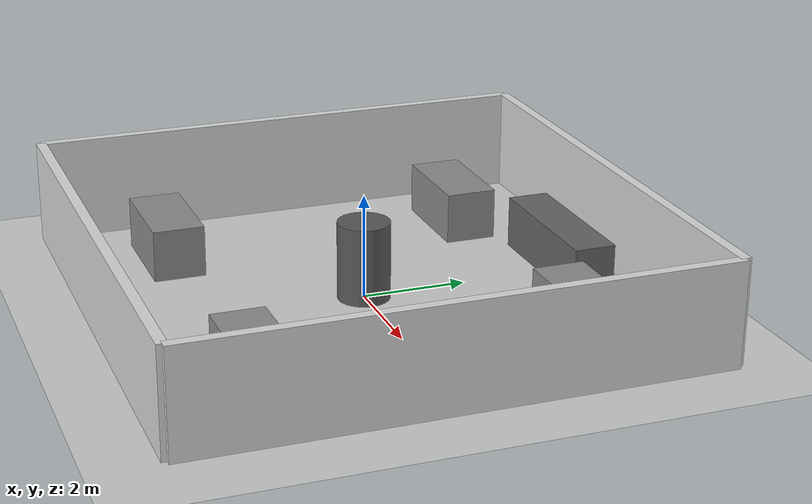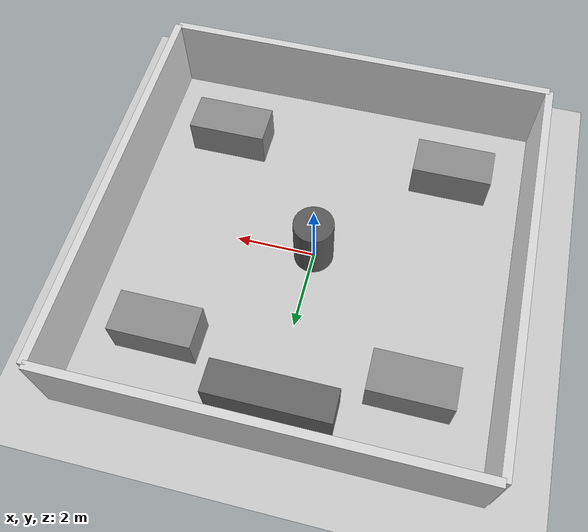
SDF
<?xml version="1.0"?>
<sdf version="1.6">

<world name="amr_world">

  <physics type="ode">
    <max_step_size>0.01</max_step_size>
    <real_time_update_rate>100</real_time_update_rate>
  </physics>

  <!-- Ground -->
  <include>
    <uri>model://ground_plane</uri>
  </include>

  <!-- Sun -->
  <include>
    <uri>model://sun</uri>
  </include>

  <!-- NORTH WALL -->
  <model name="north_wall">
    <static>true</static>
    <pose>0 5 1 0 0 0</pose>

    <link name="link">

      <collision name="collision">
        <geometry>
          <box>
            <size>10 0.2 2</size>
          </box>
        </geometry>
      </collision>

      <visual name="visual">
        <geometry>
          <box>
            <size>10 0.2 2</size>
          </box>
        </geometry>

        <material>
          <ambient>0.85 0.85 0.85 1</ambient>
          <diffuse>0.85 0.85 0.85 1</diffuse>
        </material>

      </visual>

    </link>
  </model>

  <!-- SOUTH WALL -->
  <model name="south_wall">
    <static>true</static>
    <pose>0 -5 1 0 0 0</pose>

    <link name="link">

      <collision name="collision">
        <geometry>
          <box>
            <size>10 0.2 2</size>
          </box>
        </geometry>
      </collision>

      <visual name="visual">
        <geometry>
          <box>
            <size>10 0.2 2</size>
          </box>
        </geometry>

        <material>
          <ambient>0.85 0.85 0.85 1</ambient>
          <diffuse>0.85 0.85 0.85 1</diffuse>
        </material>

      </visual>

    </link>
  </model>

  <!-- EAST WALL -->
  <model name="east_wall">
    <static>true</static>
    <pose>5 0 1 0 0 1.5708</pose>

    <link name="link">

      <collision name="collision">
        <geometry>
          <box>
            <size>10 0.2 2</size>
          </box>
        </geometry>
      </collision>

      <visual name="visual">
        <geometry>
          <box>
            <size>10 0.2 2</size>
          </box>
        </geometry>

        <material>
          <ambient>0.85 0.85 0.85 1</ambient>
          <diffuse>0.85 0.85 0.85 1</diffuse>
        </material>

      </visual>

    </link>
  </model>

  <!-- WEST WALL -->
  <model name="west_wall">
    <static>true</static>
    <pose>-5 0 1 0 0 1.5708</pose>

    <link name="link">

      <collision name="collision">
        <geometry>
          <box>
            <size>10 0.2 2</size>
          </box>
        </geometry>
      </collision>

      <visual name="visual">
        <geometry>
          <box>
            <size>10 0.2 2</size>
          </box>
        </geometry>

        <material>
          <ambient>0.85 0.85 0.85 1</ambient>
          <diffuse>0.85 0.85 0.85 1</diffuse>
        </material>

      </visual>

    </link>
  </model>

  <!-- LARGE MACHINE 1 -->

  <model name="machine_1">

    <static>true</static>

    <pose>-3 -3 0.5 0 0 0</pose>

    <link name="link">

      <collision name="collision">
        <geometry>
          <box>
            <size>2 1 1</size>
          </box>
        </geometry>
      </collision>

      <visual name="visual">
        <geometry>
          <box>
            <size>2 1 1</size>
          </box>
        </geometry>

        <material>
          <ambient>0.55 0.55 0.55 1</ambient>
          <diffuse>0.55 0.55 0.55 1</diffuse>
        </material>

      </visual>

    </link>

  </model>

  <!-- MACHINE 2 -->

  <model name="machine_2">

    <static>true</static>

    <pose>3 -3 0.5 0 0 0</pose>

    <link name="link">

      <collision name="collision">
        <geometry>
          <box>
            <size>2 1 1</size>
          </box>
        </geometry>
      </collision>

      <visual name="visual">
        <geometry>
          <box>
            <size>2 1 1</size>
          </box>
        </geometry>

        <material>
          <ambient>0.55 0.55 0.55 1</ambient>
          <diffuse>0.55 0.55 0.55 1</diffuse>
        </material>

      </visual>

    </link>

  </model>

  <!-- MACHINE 3 -->

  <model name="machine_3">

    <static>true</static>

    <pose>-3 3 0.5 0 0 0</pose>

    <link name="link">

      <collision name="collision">
        <geometry>
          <box>
            <size>2 1 1</size>
          </box>
        </geometry>
      </collision>

      <visual name="visual">
        <geometry>
          <box>
            <size>2 1 1</size>
          </box>
        </geometry>

        <material>
          <ambient>0.55 0.55 0.55 1</ambient>
          <diffuse>0.55 0.55 0.55 1</diffuse>
        </material>

      </visual>

    </link>

  </model>

  <!-- MACHINE 4 -->

  <model name="machine_4">

    <static>true</static>

    <pose>3 3 0.5 0 0 0</pose>

    <link name="link">

      <collision name="collision">
        <geometry>
          <box>
            <size>2 1 1</size>
          </box>
        </geometry>
      </collision>

      <visual name="visual">
        <geometry>
          <box>
            <size>2 1 1</size>
          </box>
        </geometry>

        <material>
          <ambient>0.55 0.55 0.55 1</ambient>
          <diffuse>0.55 0.55 0.55 1</diffuse>
        </material>

      </visual>

    </link>

  </model>

  <!-- CENTRAL PILLAR -->

  <model name="pillar">

    <static>true</static>

    <pose>0 0 0.75 0 0 0</pose>

    <link name="link">

      <collision name="collision">
        <geometry>
          <cylinder>
            <radius>0.5</radius>
            <length>1.5</length>
          </cylinder>
        </geometry>
      </collision>

      <visual name="visual">
        <geometry>
          <cylinder>
            <radius>0.5</radius>
            <length>1.5</length>
          </cylinder>
        </geometry>

        <material>
          <ambient>0.35 0.35 0.35 1</ambient>
          <diffuse>0.35 0.35 0.35 1</diffuse>
        </material>

      </visual>

    </link>

  </model>

  <!-- LONG SHELF -->

  <model name="shelf">

    <static>true</static>

    <pose>0 4 0.5 0 0 0</pose>

    <link name="link">

      <collision name="collision">
        <geometry>
          <box>
            <size>3 0.8 1</size>
          </box>
        </geometry>
      </collision>

      <visual name="visual">
        <geometry>
          <box>
            <size>3 0.8 1</size>
          </box>
        </geometry>

        <material>
          <ambient>0.40 0.40 0.40 1</ambient>
          <diffuse>0.40 0.40 0.40 1</diffuse>
        </material>

      </visual>

    </link>

  </model>

</world>

</sdf>
